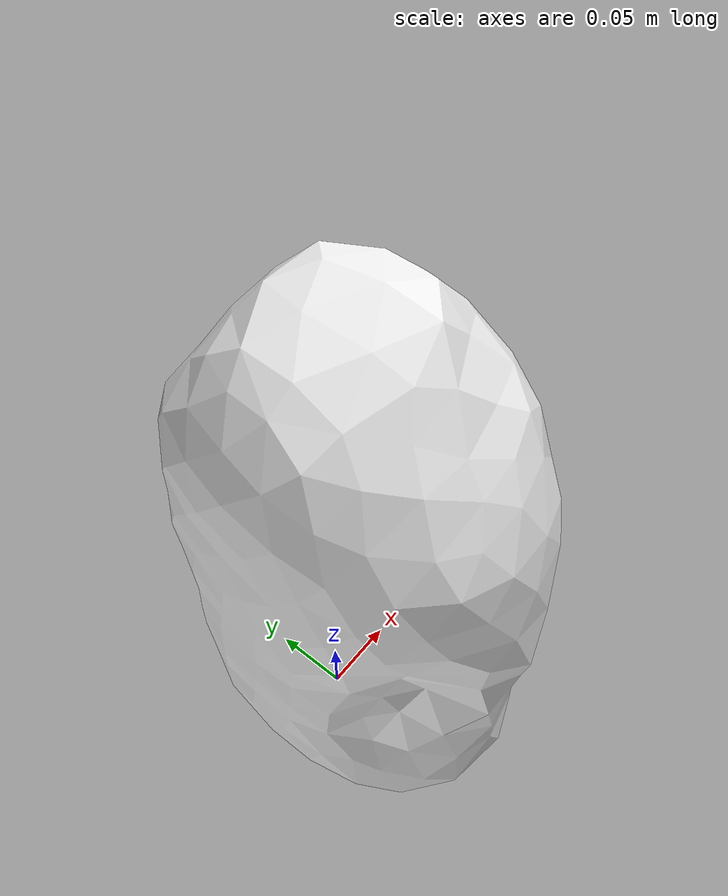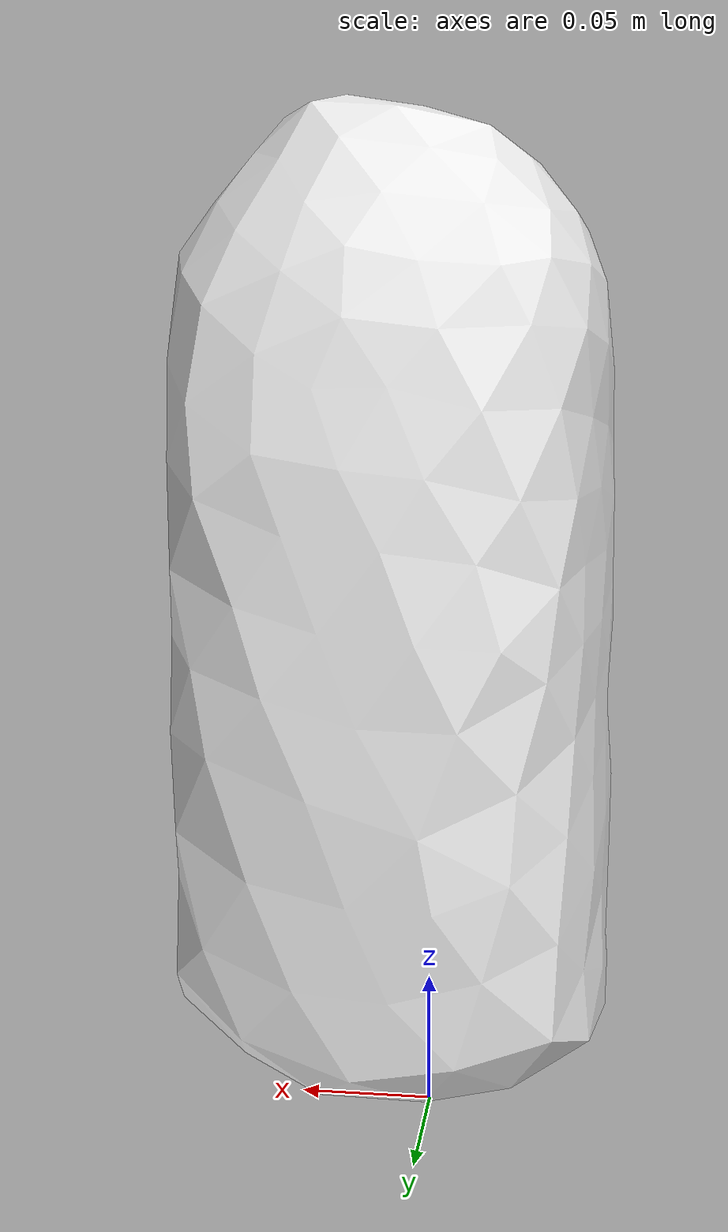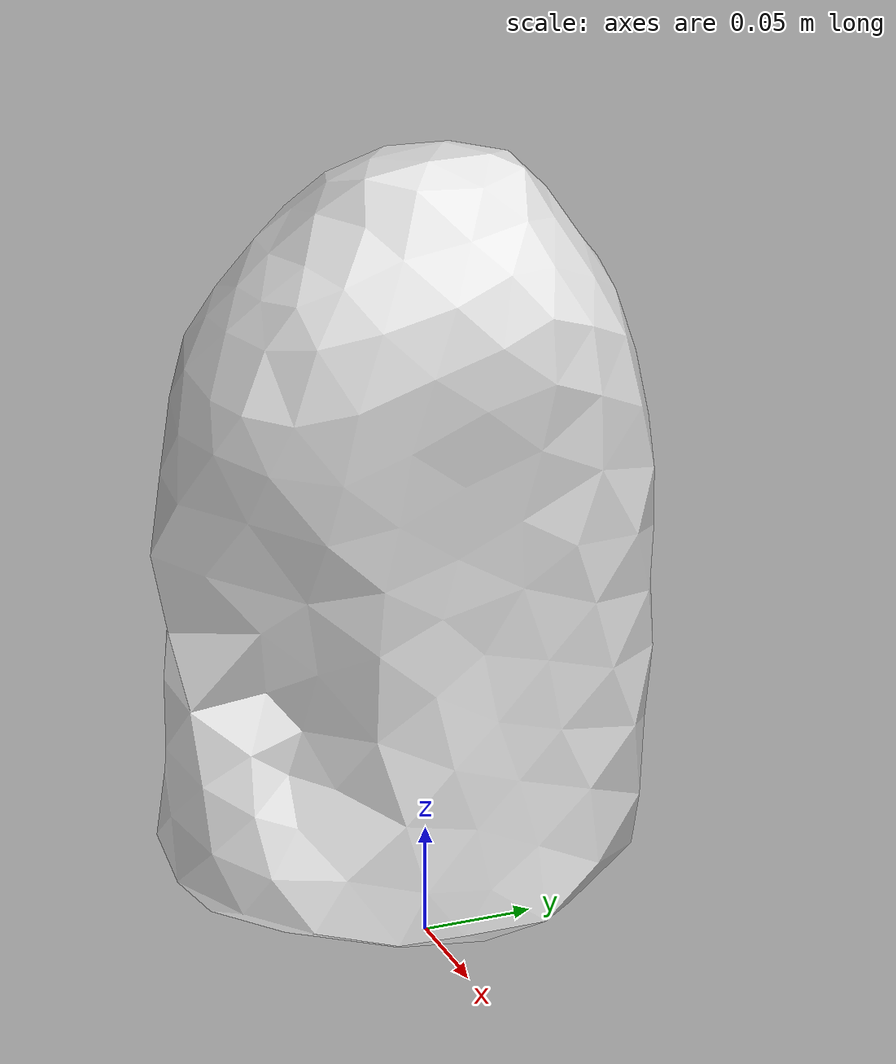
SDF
<?xml version="1.0" ?><sdf version="1.5"><model name="persil-detergent">
<link name="link">
<pose>0 0 0 0 0 0</pose>
<inertial>
<pose>0.0119975 -0.018828 0.199706 0 0 0</pose>
<mass>0.24</mass>
<inertia>
<ixx>0.00348626</ixx>
<ixy>0</ixy><iyy>0.00303217</iyy>
<ixz>0</ixz><iyz>0</iyz><izz>0.00148431</izz>
</inertia>
</inertial>
<visual name="visual">
<pose>0 0 0 0 0 0</pose>
<geometry><mesh><uri>model://persil-detergent/meshes/persil-detergent.dae</uri></mesh></geometry>
<material><script><uri>file://media/materials/scripts/gazebo.material</uri><name>Gazebo/WhiteGlow</name></script></material></visual>
<collision name="collision"><pose>0 0 0 0 0 0</pose><geometry><mesh><uri>model://persil-detergent/meshes/persil-detergent.dae</uri></mesh></geometry>
<surface><friction><ode><mu>1.000000</mu><mu2>1.000000</mu2></ode></friction></surface>
</collision></link></model></sdf>
